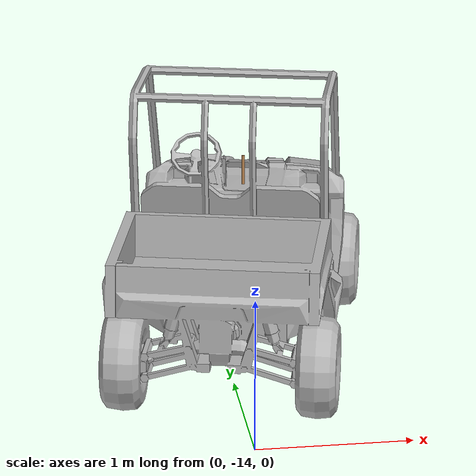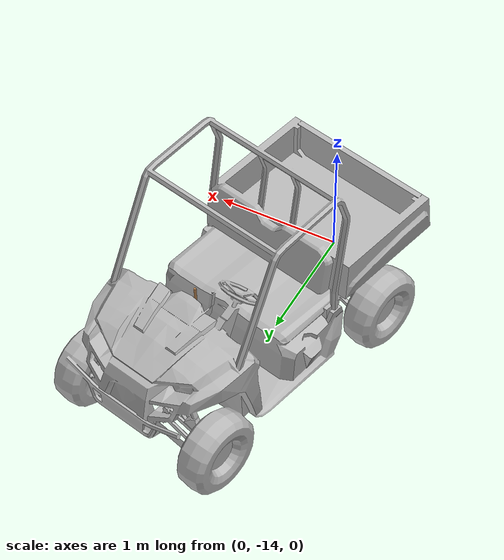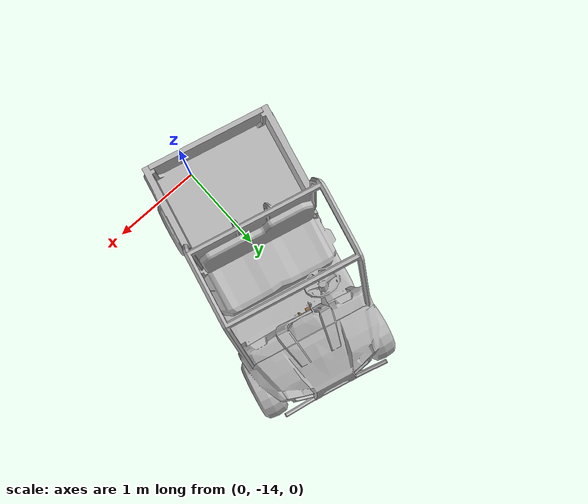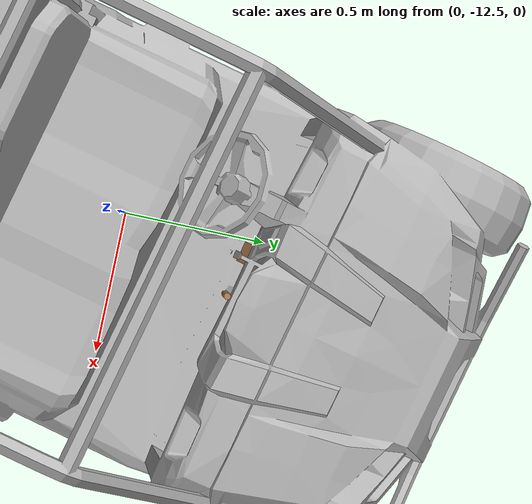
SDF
<sdf version="1.6">
 <world name="default">
  <model name="polaris_ranger_ev_clone_1_clone_clone_clone_clone_5">
   <static>true</static>
   <link name="chassis">
    <inertial>
     <mass>720</mass>
     <inertia><ixx>140</ixx><ixy>0</ixy><iyy>550</iyy><ixz>0</ixz><iyz>0</iyz><izz>550</izz></inertia>
    </inertial>
    <visual name="visual">
     <pose>0 0 0 0 0 -1.5708</pose>
     <geometry><mesh><uri>model://polaris_ranger_ev/meshes/polaris.dae</uri><scale>1 1 1</scale></mesh></geometry>
     <material>
      <script>
       <uri>model://polaris_ranger_ev/materials/scripts</uri>
       <uri>model://polaris_ranger_ev/materials/textures</uri>
       <name>Polaris/Diffuse</name>
      </script>
     </material>
    </visual>
    <collision name="chassis_bottom">
     <pose>0 0 0.35 0 -0 0</pose>
     <geometry><box><size>2 1 0.1</size></box></geometry>
    </collision>
    <collision name="cargo_bottom">
     <pose>-0.9 0 0.9 0 -0 0</pose>
     <geometry><box><size>0.9 1.2 0.01</size></box></geometry>
    </collision>
    <collision name="cargo_front">
     <pose>-0.45 0 1.025 0 -0 0</pose>
     <geometry><box><size>0.05 1.2 0.25</size></box></geometry>
    </collision>
    <collision name="cargo_back">
     <pose>-1.35 0 1.025 0 -0 0</pose>
     <geometry><box><size>0.05 1.2 0.25</size></box></geometry>
    </collision>
    <collision name="cargo_left">
     <pose>-0.9 0.6 1.025 0 -0 0</pose>
     <geometry><box><size>0.9 0.05 0.25</size></box></geometry>
    </collision>
    <collision name="cargo_right">
     <pose>-0.9 -0.6 1.025 0 -0 0</pose>
     <geometry><box><size>0.9 0.05 0.25</size></box></geometry>
    </collision>
    <collision name="seat">
     <pose>-0.1 0 0.625 0 -0 0</pose>
     <geometry><box><size>0.6 1 0.65</size></box></geometry>
    </collision>
    <collision name="seat_back">
     <pose>-0.3 0 1.125 0 -0.2 0</pose>
     <geometry><box><size>0.1 1 0.4</size></box></geometry>
    </collision>
    <collision name="engine">
     <pose>0.95 0 0.7 0 -0 0</pose>
     <geometry><box><size>0.58 1 0.8</size></box></geometry>
    </collision>
    <collision name="steering_column">
     <pose>0.525 0.3 1.025 0 -0.8 0</pose>
     <geometry><cylinder><radius>0.05</radius><length>0.45</length></cylinder></geometry>
    </collision>
   </link>
   <link name="rear_right_wheel">
    <pose>-0.85 -0.6 0.32 1.5708 -0 0</pose>
    <inertial>
     <mass>12</mass>
     <inertia><ixx>0.5</ixx><ixy>0</ixy><iyy>0.5</iyy><ixz>0</ixz><iyz>0</iyz><izz>1</izz></inertia>
    </inertial>
    <collision name="collision">
     <geometry><cylinder><radius>0.32</radius><length>0.23</length></cylinder></geometry>
     <surface>
      <friction><ode><mu>100000</mu><mu2>100000</mu2><slip1>0</slip1><slip2>0</slip2></ode></friction>
     </surface>
    </collision>
   </link>
   <joint name="rear_right_wheel_joint" type="revolute">
    <pose>0 0 -0.1 0 -0 0</pose>
    <child>rear_right_wheel</child>
    <parent>chassis</parent>
    <axis>
     <xyz>0 1 0</xyz>
     <use_parent_model_frame>1</use_parent_model_frame>
     <limit><lower>-1e+16</lower><upper>1e+16</upper></limit>
     <dynamics><spring_reference>0</spring_reference><spring_stiffness>0</spring_stiffness></dynamics>
    </axis>
    <physics><ode><limit><cfm>0</cfm><erp>0.9</erp></limit></ode></physics>
   </joint>
   <link name="rear_left_wheel">
    <pose>-0.85 0.6 0.32 1.5708 -0 0</pose>
    <inertial>
     <mass>12</mass>
     <inertia><ixx>0.5</ixx><ixy>0</ixy><iyy>0.5</iyy><ixz>0</ixz><iyz>0</iyz><izz>1</izz></inertia>
    </inertial>
    <collision name="collision">
     <geometry><cylinder><radius>0.32</radius><length>0.23</length></cylinder></geometry>
     <surface>
      <friction><ode><mu>100000</mu><mu2>100000</mu2><slip1>0</slip1><slip2>0</slip2></ode></friction>
     </surface>
    </collision>
   </link>
   <joint name="rear_left_wheel_joint" type="revolute">
    <child>rear_left_wheel</child>
    <parent>chassis</parent>
    <axis>
     <xyz>0 1 0</xyz>
     <use_parent_model_frame>1</use_parent_model_frame>
     <limit><lower>-1e+16</lower><upper>1e+16</upper></limit>
     <dynamics><spring_reference>0</spring_reference><spring_stiffness>0</spring_stiffness></dynamics>
    </axis>
    <physics><ode><limit><cfm>0</cfm><erp>0.9</erp></limit></ode></physics>
   </joint>
   <link name="front_right_wheel">
    <pose>1.03 -0.6 0.32 1.5708 -0 0</pose>
    <inertial>
     <mass>12</mass>
     <inertia><ixx>0.5</ixx><ixy>0</ixy><iyy>0.5</iyy><ixz>0</ixz><iyz>0</iyz><izz>1</izz></inertia>
    </inertial>
    <collision name="collision">
     <geometry><cylinder><radius>0.32</radius><length>0.23</length></cylinder></geometry>
     <surface>
      <friction><ode><mu>100000</mu><mu2>100000</mu2><slip1>0</slip1><slip2>0</slip2></ode></friction>
     </surface>
    </collision>
   </link>
   <link name="front_right_wheel_steering_block">
    <pose>1.03 -0.5 0.32 1.5708 -0 0</pose>
    <inertial>
     <mass>1</mass>
     <inertia><ixx>1</ixx><ixy>0</ixy><iyy>1</iyy><ixz>0</ixz><iyz>0</iyz><izz>1</izz></inertia>
    </inertial>
    <collision name="collision">
     <geometry><cylinder><radius>0.05</radius><length>0.01</length></cylinder></geometry>
    </collision>
   </link>
   <joint name="front_right_steering_joint" type="revolute">
    <child>front_right_wheel_steering_block</child>
    <parent>chassis</parent>
    <axis>
     <xyz>0 0 1</xyz>
     <limit><lower>-1</lower><upper>1</upper></limit>
     <use_parent_model_frame>1</use_parent_model_frame>
     <dynamics><spring_reference>0</spring_reference><spring_stiffness>0</spring_stiffness></dynamics>
    </axis>
    <physics><ode><limit><cfm>0</cfm><erp>0.9</erp></limit></ode></physics>
   </joint>
   <joint name="front_right_wheel_joint" type="revolute">
    <child>front_right_wheel</child>
    <parent>front_right_wheel_steering_block</parent>
    <axis>
     <xyz>0 1 0</xyz>
     <use_parent_model_frame>1</use_parent_model_frame>
     <limit><lower>-1e+16</lower><upper>1e+16</upper></limit>
     <dynamics><spring_reference>0</spring_reference><spring_stiffness>0</spring_stiffness></dynamics>
    </axis>
    <physics><ode><limit><cfm>0</cfm><erp>0.9</erp></limit></ode></physics>
   </joint>
   <link name="front_left_wheel">
    <pose>1.03 0.6 0.32 1.5708 -0 0</pose>
    <inertial>
     <mass>12</mass>
     <inertia><ixx>0.5</ixx><ixy>0</ixy><iyy>0.5</iyy><ixz>0</ixz><iyz>0</iyz><izz>1</izz></inertia>
    </inertial>
    <collision name="collision">
     <geometry><cylinder><radius>0.32</radius><length>0.23</length></cylinder></geometry>
     <surface>
      <friction><ode><mu>100000</mu><mu2>100000</mu2><slip1>0</slip1><slip2>0</slip2></ode></friction>
     </surface>
    </collision>
   </link>
   <link name="front_left_wheel_steering_block">
    <pose>1.03 0.5 0.32 1.5708 -0 0</pose>
    <inertial>
     <mass>1</mass>
     <inertia><ixx>1</ixx><ixy>0</ixy><iyy>1</iyy><ixz>0</ixz><iyz>0</iyz><izz>1</izz></inertia>
    </inertial>
    <collision name="collision">
     <geometry><cylinder><radius>0.05</radius><length>0.01</length></cylinder></geometry>
    </collision>
   </link>
   <joint name="front_left_steering_joint" type="revolute">
    <child>front_left_wheel_steering_block</child>
    <parent>chassis</parent>
    <axis>
     <xyz>0 0 1</xyz>
     <limit><lower>-1</lower><upper>1</upper></limit>
     <use_parent_model_frame>1</use_parent_model_frame>
     <dynamics><spring_reference>0</spring_reference><spring_stiffness>0</spring_stiffness></dynamics>
    </axis>
    <physics><ode><limit><cfm>0</cfm><erp>0.9</erp></limit></ode></physics>
   </joint>
   <joint name="front_left_wheel_joint" type="revolute">
    <child>front_left_wheel</child>
    <parent>front_left_wheel_steering_block</parent>
    <axis>
     <xyz>0 1 0</xyz>
     <use_parent_model_frame>1</use_parent_model_frame>
     <limit><lower>-1e+16</lower><upper>1e+16</upper></limit>
     <dynamics><spring_reference>0</spring_reference><spring_stiffness>0</spring_stiffness></dynamics>
    </axis>
    <physics><ode><limit><cfm>0</cfm><erp>0.9</erp></limit></ode></physics>
   </joint>
   <link name="gas_pedal">
    <pose>0.53 0.14 0.56 0 -1 0</pose>
    <gravity>0</gravity>
    <inertial>
     <mass>0.1</mass>
     <inertia><ixx>0.01</ixx><ixy>0</ixy><ixz>0</ixz><iyy>0.01</iyy><iyz>0</iyz><izz>0.01</izz></inertia>
    </inertial>
    <collision name="gas_pedal_collision"><geometry><box><size>0.12 0.07 0.03</size></box></geometry></collision>
    <visual name="gas_pedal_visual">
     <geometry><box><size>0.12 0.07 0.03</size></box></geometry>
     <material>
      <script><uri>file://media/materials/scripts/gazebo.material</uri><name>Gazebo/Wood</name></script>
      <ambient>0.2 0.2 0.2 1</ambient>
      <diffuse>0.2 0.2 0.2 1</diffuse>
      <specular>0.2 0.2 0.2 1</specular>
      <emissive>0.5 0.5 0.5 1</emissive>
     </material>
    </visual>
   </link>
   <link name="brake_pedal">
    <gravity>0</gravity>
    <pose>0.54 0.27 0.58 0 -1 0</pose>
    <inertial>
     <mass>0.1</mass>
     <inertia><ixx>0.01</ixx><ixy>0</ixy><ixz>0</ixz><iyy>0.01</iyy><iyz>0</iyz><izz>0.01</izz></inertia>
    </inertial>
    <collision name="brake_pedal_collision">
     <geometry><box><size>0.06 0.08 0.03</size></box></geometry>
    </collision>
    <visual name="brake_pedal_visual">
     <geometry><box><size>0.06 0.08 0.03</size></box></geometry>
     <material>
      <script><uri>file://media/materials/scripts/gazebo.material</uri><name>Gazebo/Wood</name></script>
      <ambient>0.2 0.2 0.2 1</ambient>
      <diffuse>0.2 0.2 0.2 1</diffuse>
      <specular>0.2 0.2 0.2 1</specular>
      <emissive>0.5 0.5 0.5 1</emissive>
     </material>
    </visual>
   </link>
   <link name="steering_wheel">
    <pose>0.37 0.3 1.2 0 -0.8 0</pose>
    <inertial>
     <mass>1</mass>
     <inertia><ixx>0.1</ixx><ixy>0</ixy><ixz>0</ixz><iyy>0.1</iyy><iyz>0</iyz><izz>1</izz></inertia>
    </inertial>
    <collision name="steering_wheel_post_left">
     <pose>0 0.08 0 1.5708 -0 0</pose>
     <geometry><cylinder><radius>0.02</radius><length>0.15</length></cylinder></geometry>
    </collision>
    <collision name="steering_wheel_post_right">
     <pose>0 -0.08 0 1.5708 -0 0</pose>
     <geometry><cylinder><radius>0.02</radius><length>0.15</length></cylinder></geometry>
    </collision>
    <collision name="steering_wheel_post_middle">
     <pose>-0.08 0 0 3.14159 1.57079 3.14159</pose>
     <geometry><cylinder><radius>0.02</radius><length>0.15</length></cylinder></geometry>
    </collision>
    <collision name="collision00">
     <pose>0.15 0 0 3.14159 1.57079 -1.57079</pose>
     <geometry><cylinder><length>0.105066</length><radius>0.01</radius></cylinder></geometry>
    </collision>
    <collision name="collision01">
     <pose>0.121353 0.088168 0 3.14159 1.57079 -0.942483</pose>
     <geometry><cylinder><length>0.105066</length><radius>0.01</radius></cylinder></geometry>
    </collision>
    <collision name="collision02">
     <pose>0.046353 0.142658 0 3.14159 1.57079 -0.314163</pose>
     <geometry><cylinder><length>0.105066</length><radius>0.01</radius></cylinder></geometry>
    </collision>
    <collision name="collision03">
     <pose>-0.046353 0.142658 0 3.14159 1.57079 0.314163</pose>
     <geometry><cylinder><length>0.105066</length><radius>0.01</radius></cylinder></geometry>
    </collision>
    <collision name="collision04">
     <pose>-0.121353 0.088168 0 -3.14159 1.57079 0.942483</pose>
     <geometry><cylinder><length>0.105066</length><radius>0.01</radius></cylinder></geometry>
    </collision>
    <collision name="collision05">
     <pose>-0.15 0 0 -3.14159 1.57079 1.57079</pose>
     <geometry><cylinder><length>0.105066</length><radius>0.01</radius></cylinder></geometry>
    </collision>
    <collision name="collision06">
     <pose>-0.121353 -0.088168 0 3.14159 1.57079 2.19912</pose>
     <geometry><cylinder><length>0.105066</length><radius>0.01</radius></cylinder></geometry>
    </collision>
    <collision name="collision07">
     <pose>-0.046353 -0.142658 0 -3.14159 1.57079 2.82743</pose>
     <geometry><cylinder><length>0.105066</length><radius>0.01</radius></cylinder></geometry>
    </collision>
    <collision name="collision08">
     <pose>0.046353 -0.142658 0 3.14159 1.57079 -2.82743</pose>
     <geometry><cylinder><length>0.105066</length><radius>0.01</radius></cylinder></geometry>
    </collision>
    <collision name="collision09">
     <pose>0.121353 -0.088168 0 -3.14159 1.57079 -2.19911</pose>
     <geometry><cylinder><length>0.105066</length><radius>0.01</radius></cylinder></geometry>
    </collision>
   </link>
   <link name="hand_brake">
    <pose>0.5 0 1.05 3.14159 -0.058407 3.14159</pose>
    <inertial>
     <mass>1</mass>
     <pose>0 0 -0.15 0 -0 0</pose>
     <inertia><ixx>0.1</ixx><ixy>0</ixy><ixz>0</ixz><iyy>0.1</iyy><iyz>0</iyz><izz>1</izz></inertia>
    </inertial>
    <collision name="hand_brake_collision">
     <pose>0 0 -0.1 0 -0 0</pose>
     <geometry><cylinder><radius>0.01</radius><length>0.2</length></cylinder></geometry>
    </collision>
    <visual name="hand_brake_visual">
     <pose>0 0 -0.1 0 -0 0</pose>
     <geometry><cylinder><radius>0.01</radius><length>0.2</length></cylinder></geometry>
     <material>
      <script><uri>file://media/materials/scripts/gazebo.material</uri><name>Gazebo/Wood</name></script>
     </material>
    </visual>
   </link>
   <joint name="gas_joint" type="prismatic">
    <parent>chassis</parent>
    <child>gas_pedal</child>
    <axis>
     <xyz>1 0 -1</xyz>
     <limit><lower>0</lower><upper>0.15</upper></limit>
     <use_parent_model_frame>1</use_parent_model_frame>
     <dynamics><spring_reference>0</spring_reference><spring_stiffness>0</spring_stiffness></dynamics>
    </axis>
   </joint>
   <joint name="brake_joint" type="prismatic">
    <parent>chassis</parent>
    <child>brake_pedal</child>
    <axis>
     <xyz>1 0 -0.6</xyz>
     <limit><lower>0</lower><upper>0.15</upper></limit>
     <use_parent_model_frame>1</use_parent_model_frame>
     <dynamics><spring_reference>0</spring_reference><spring_stiffness>0</spring_stiffness></dynamics>
    </axis>
   </joint>
   <joint name="steering_joint" type="revolute">
    <pose>0 0 0 1.5708 -0.8 0</pose>
    <parent>chassis</parent>
    <child>steering_wheel</child>
    <axis>
     <xyz>-1 0 1.023</xyz>
     <limit><lower>-7.853</lower><upper>7.853</upper></limit>
     <use_parent_model_frame>1</use_parent_model_frame>
     <dynamics><spring_reference>0</spring_reference><spring_stiffness>0</spring_stiffness></dynamics>
    </axis>
   </joint>
   <joint name="hand_brake_joint" type="revolute">
    <parent>chassis</parent>
    <child>hand_brake</child>
    <axis>
     <xyz>0 -1 0</xyz>
     <limit><lower>0</lower><upper>0.6</upper></limit>
     <use_parent_model_frame>1</use_parent_model_frame>
     <dynamics><spring_reference>0</spring_reference><spring_stiffness>0</spring_stiffness></dynamics>
    </axis>
   </joint>
   <pose>0.068505 -12.5737 -5.2e-05 0 4.8e-05 1.33391</pose>
  </model>
 </world>
</sdf>
